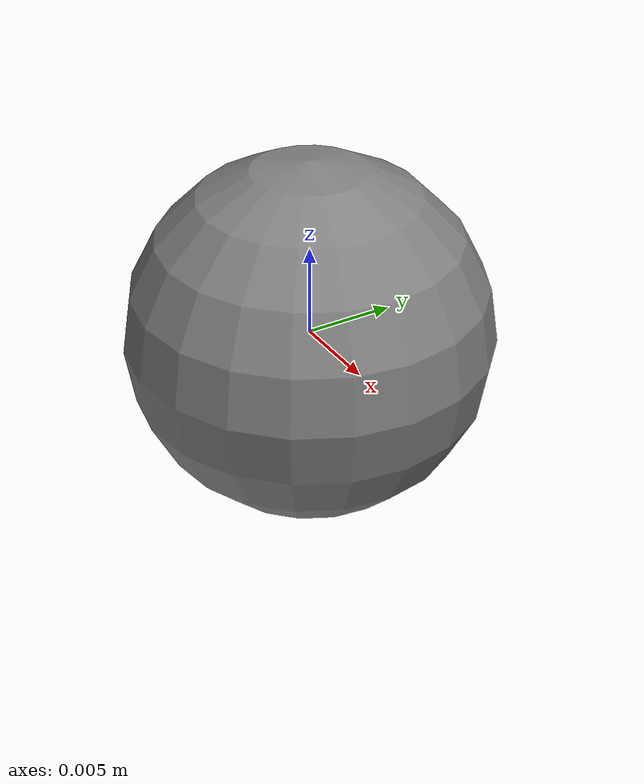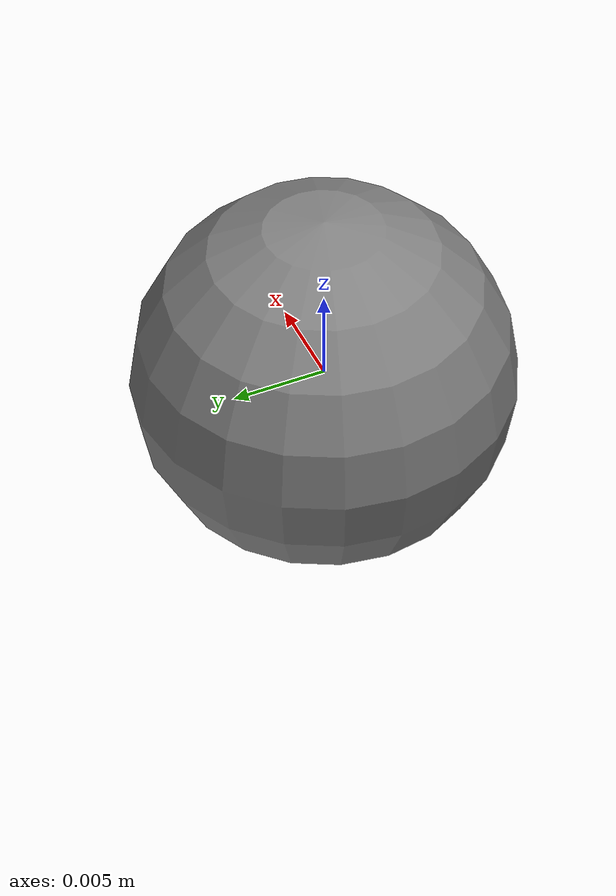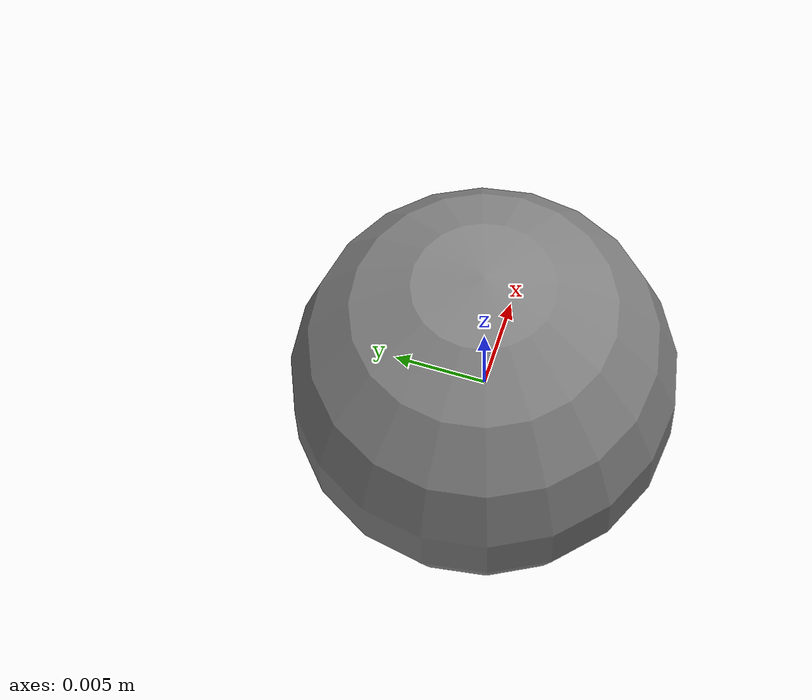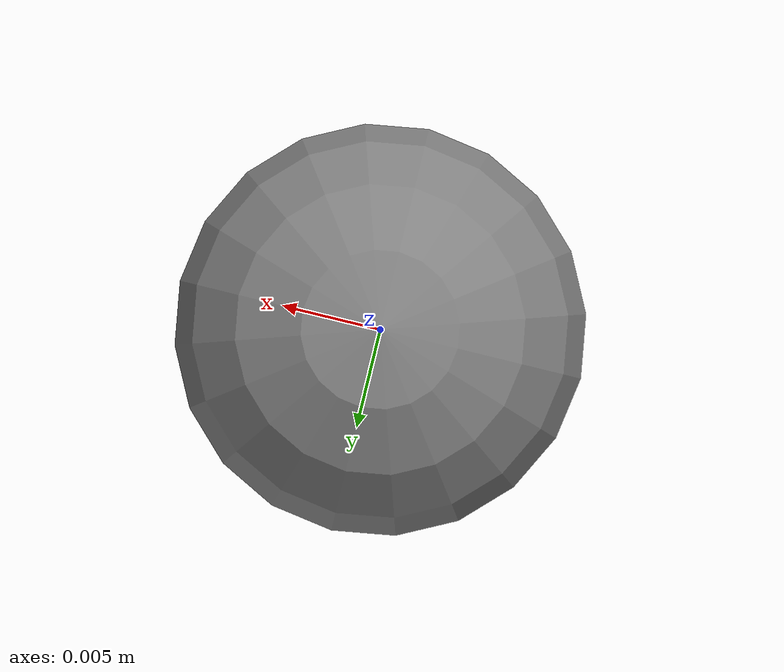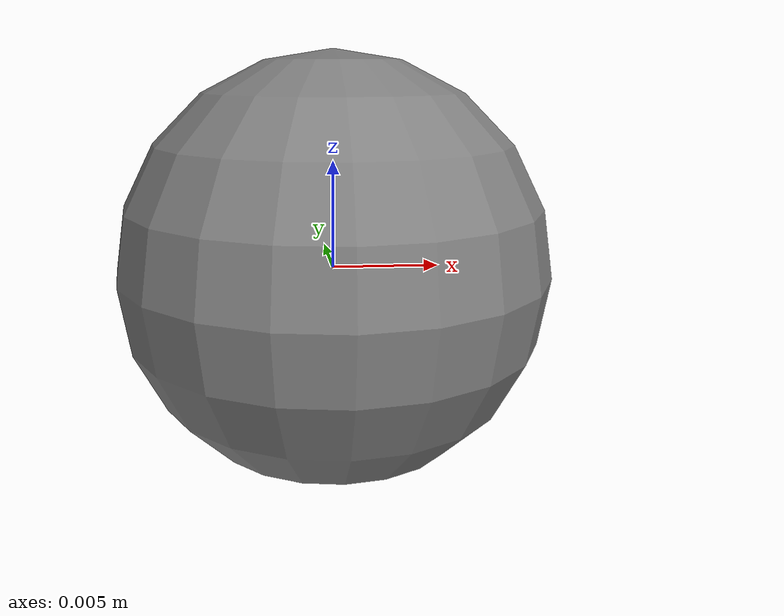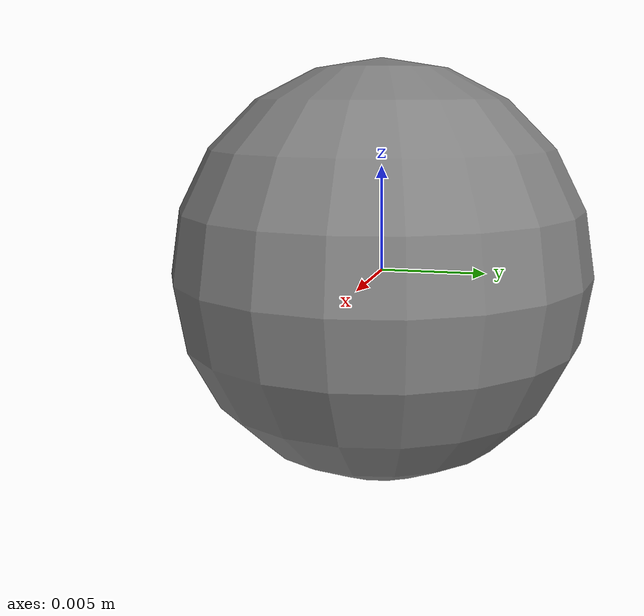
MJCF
<mujoco model="progressive_interface_fixture"><option timestep="0.00025000000000000001" gravity="0 0 0" integrator="implicitfast" solver="Newton" iterations="100" tolerance="1e-8"/>
    <worldbody><site name="fixed_H" pos="0 0 0"/><body name="plate"><freejoint name="free"/><inertial pos="0 0 0" mass="1.2311469164688353" diaginertia="0.054536914943790489 0.054536914943790489 0.054536914943790489"/><geom type="sphere" size="0.01" contype="0" conaffinity="0"/><site name="moving_R" pos="0 0 0"/></body></worldbody></mujoco>
